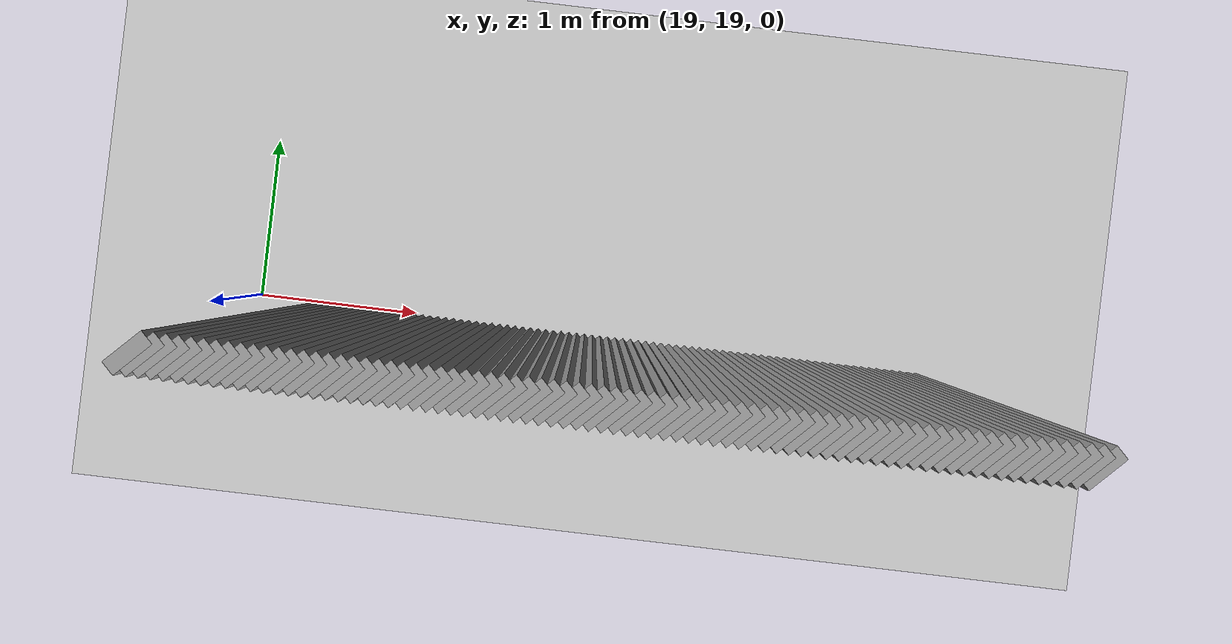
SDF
<sdf version="1.5">
 <world name="default">
  <include><uri>model://ground_plane</uri></include>
  <include><uri>model://sun</uri></include>
  <model name="grey_wall_553">
   <static>1</static>
   <link name="link">
    <pose>19.3 18.9  1.4 0 0 -0.785398163397</pose>
    <collision name="collision"><geometry><box><size>0.0707106781187 .2  2.8</size></box></geometry></collision>
    <visual name="visual">
     <cast_shadows>0</cast_shadows>
     <geometry><box><size>0.0707106781187 .2  2.8</size></box></geometry>
     <material>
      <script>
       <uri>model://grey_wall/materials/scripts</uri>
       <uri>model://grey_wall/materials/textures</uri>
       <name>vrc/grey_wall</name>
      </script>
     </material>
    </visual>
   </link>
  </model>
  <model name="grey_wall_554">
   <static>1</static>
   <link name="link">
    <pose>19.35 18.9  1.4 0 0 -0.785398163397</pose>
    <collision name="collision"><geometry><box><size>0.0707106781187 .2  2.8</size></box></geometry></collision>
    <visual name="visual">
     <cast_shadows>0</cast_shadows>
     <geometry><box><size>0.0707106781187 .2  2.8</size></box></geometry>
     <material>
      <script>
       <uri>model://grey_wall/materials/scripts</uri>
       <uri>model://grey_wall/materials/textures</uri>
       <name>vrc/grey_wall</name>
      </script>
     </material>
    </visual>
   </link>
  </model>
  <model name="grey_wall_555">
   <static>1</static>
   <link name="link">
    <pose>19.4 18.9  1.4 0 0 -0.785398163397</pose>
    <collision name="collision"><geometry><box><size>0.0707106781187 .2  2.8</size></box></geometry></collision>
    <visual name="visual">
     <cast_shadows>0</cast_shadows>
     <geometry><box><size>0.0707106781187 .2  2.8</size></box></geometry>
     <material>
      <script>
       <uri>model://grey_wall/materials/scripts</uri>
       <uri>model://grey_wall/materials/textures</uri>
       <name>vrc/grey_wall</name>
      </script>
     </material>
    </visual>
   </link>
  </model>
  <model name="grey_wall_556">
   <static>1</static>
   <link name="link">
    <pose>19.45 18.9  1.4 0 0 -0.785398163397</pose>
    <collision name="collision"><geometry><box><size>0.0707106781187 .2  2.8</size></box></geometry></collision>
    <visual name="visual">
     <cast_shadows>0</cast_shadows>
     <geometry><box><size>0.0707106781187 .2  2.8</size></box></geometry>
     <material>
      <script>
       <uri>model://grey_wall/materials/scripts</uri>
       <uri>model://grey_wall/materials/textures</uri>
       <name>vrc/grey_wall</name>
      </script>
     </material>
    </visual>
   </link>
  </model>
  <model name="grey_wall_557">
   <static>1</static>
   <link name="link">
    <pose>19.5 18.9  1.4 0 0 -0.785398163397</pose>
    <collision name="collision"><geometry><box><size>0.0707106781187 .2  2.8</size></box></geometry></collision>
    <visual name="visual">
     <cast_shadows>0</cast_shadows>
     <geometry><box><size>0.0707106781187 .2  2.8</size></box></geometry>
     <material>
      <script>
       <uri>model://grey_wall/materials/scripts</uri>
       <uri>model://grey_wall/materials/textures</uri>
       <name>vrc/grey_wall</name>
      </script>
     </material>
    </visual>
   </link>
  </model>
  <model name="grey_wall_558">
   <static>1</static>
   <link name="link">
    <pose>19.55 18.9  1.4 0 0 -0.785398163397</pose>
    <collision name="collision"><geometry><box><size>0.0707106781187 .2  2.8</size></box></geometry></collision>
    <visual name="visual">
     <cast_shadows>0</cast_shadows>
     <geometry><box><size>0.0707106781187 .2  2.8</size></box></geometry>
     <material>
      <script>
       <uri>model://grey_wall/materials/scripts</uri>
       <uri>model://grey_wall/materials/textures</uri>
       <name>vrc/grey_wall</name>
      </script>
     </material>
    </visual>
   </link>
  </model>
  <model name="grey_wall_559">
   <static>1</static>
   <link name="link">
    <pose>19.6 18.9  1.4 0 0 -0.785398163397</pose>
    <collision name="collision"><geometry><box><size>0.0707106781187 .2  2.8</size></box></geometry></collision>
    <visual name="visual">
     <cast_shadows>0</cast_shadows>
     <geometry><box><size>0.0707106781187 .2  2.8</size></box></geometry>
     <material>
      <script>
       <uri>model://grey_wall/materials/scripts</uri>
       <uri>model://grey_wall/materials/textures</uri>
       <name>vrc/grey_wall</name>
      </script>
     </material>
    </visual>
   </link>
  </model>
  <model name="grey_wall_560">
   <static>1</static>
   <link name="link">
    <pose>19.65 18.9  1.4 0 0 -0.785398163397</pose>
    <collision name="collision"><geometry><box><size>0.0707106781187 .2  2.8</size></box></geometry></collision>
    <visual name="visual">
     <cast_shadows>0</cast_shadows>
     <geometry><box><size>0.0707106781187 .2  2.8</size></box></geometry>
     <material>
      <script>
       <uri>model://grey_wall/materials/scripts</uri>
       <uri>model://grey_wall/materials/textures</uri>
       <name>vrc/grey_wall</name>
      </script>
     </material>
    </visual>
   </link>
  </model>
  <model name="grey_wall_561">
   <static>1</static>
   <link name="link">
    <pose>19.7 18.9  1.4 0 0 -0.785398163397</pose>
    <collision name="collision"><geometry><box><size>0.0707106781187 .2  2.8</size></box></geometry></collision>
    <visual name="visual">
     <cast_shadows>0</cast_shadows>
     <geometry><box><size>0.0707106781187 .2  2.8</size></box></geometry>
     <material>
      <script>
       <uri>model://grey_wall/materials/scripts</uri>
       <uri>model://grey_wall/materials/textures</uri>
       <name>vrc/grey_wall</name>
      </script>
     </material>
    </visual>
   </link>
  </model>
  <model name="grey_wall_562">
   <static>1</static>
   <link name="link">
    <pose>19.75 18.9  1.4 0 0 -0.785398163397</pose>
    <collision name="collision"><geometry><box><size>0.0707106781187 .2  2.8</size></box></geometry></collision>
    <visual name="visual">
     <cast_shadows>0</cast_shadows>
     <geometry><box><size>0.0707106781187 .2  2.8</size></box></geometry>
     <material>
      <script>
       <uri>model://grey_wall/materials/scripts</uri>
       <uri>model://grey_wall/materials/textures</uri>
       <name>vrc/grey_wall</name>
      </script>
     </material>
    </visual>
   </link>
  </model>
  <model name="grey_wall_563">
   <static>1</static>
   <link name="link">
    <pose>19.8 18.9  1.4 0 0 -0.785398163397</pose>
    <collision name="collision"><geometry><box><size>0.0707106781187 .2  2.8</size></box></geometry></collision>
    <visual name="visual">
     <cast_shadows>0</cast_shadows>
     <geometry><box><size>0.0707106781187 .2  2.8</size></box></geometry>
     <material>
      <script>
       <uri>model://grey_wall/materials/scripts</uri>
       <uri>model://grey_wall/materials/textures</uri>
       <name>vrc/grey_wall</name>
      </script>
     </material>
    </visual>
   </link>
  </model>
  <model name="grey_wall_564">
   <static>1</static>
   <link name="link">
    <pose>19.85 18.9  1.4 0 0 -0.785398163397</pose>
    <collision name="collision"><geometry><box><size>0.0707106781187 .2  2.8</size></box></geometry></collision>
    <visual name="visual">
     <cast_shadows>0</cast_shadows>
     <geometry><box><size>0.0707106781187 .2  2.8</size></box></geometry>
     <material>
      <script>
       <uri>model://grey_wall/materials/scripts</uri>
       <uri>model://grey_wall/materials/textures</uri>
       <name>vrc/grey_wall</name>
      </script>
     </material>
    </visual>
   </link>
  </model>
  <model name="grey_wall_565">
   <static>1</static>
   <link name="link">
    <pose>19.9 18.9  1.4 0 0 -0.785398163397</pose>
    <collision name="collision"><geometry><box><size>0.0707106781187 .2  2.8</size></box></geometry></collision>
    <visual name="visual">
     <cast_shadows>0</cast_shadows>
     <geometry><box><size>0.0707106781187 .2  2.8</size></box></geometry>
     <material>
      <script>
       <uri>model://grey_wall/materials/scripts</uri>
       <uri>model://grey_wall/materials/textures</uri>
       <name>vrc/grey_wall</name>
      </script>
     </material>
    </visual>
   </link>
  </model>
  <model name="grey_wall_566">
   <static>1</static>
   <link name="link">
    <pose>19.95 18.9  1.4 0 0 -0.785398163397</pose>
    <collision name="collision"><geometry><box><size>0.0707106781187 .2  2.8</size></box></geometry></collision>
    <visual name="visual">
     <cast_shadows>0</cast_shadows>
     <geometry><box><size>0.0707106781187 .2  2.8</size></box></geometry>
     <material>
      <script>
       <uri>model://grey_wall/materials/scripts</uri>
       <uri>model://grey_wall/materials/textures</uri>
       <name>vrc/grey_wall</name>
      </script>
     </material>
    </visual>
   </link>
  </model>
  <model name="grey_wall_567">
   <static>1</static>
   <link name="link">
    <pose>20.0 18.9  1.4 0 0 -0.785398163397</pose>
    <collision name="collision"><geometry><box><size>0.0707106781187 .2  2.8</size></box></geometry></collision>
    <visual name="visual">
     <cast_shadows>0</cast_shadows>
     <geometry><box><size>0.0707106781187 .2  2.8</size></box></geometry>
     <material>
      <script>
       <uri>model://grey_wall/materials/scripts</uri>
       <uri>model://grey_wall/materials/textures</uri>
       <name>vrc/grey_wall</name>
      </script>
     </material>
    </visual>
   </link>
  </model>
  <model name="grey_wall_568">
   <static>1</static>
   <link name="link">
    <pose>20.05 18.9  1.4 0 0 -0.785398163397</pose>
    <collision name="collision"><geometry><box><size>0.0707106781187 .2  2.8</size></box></geometry></collision>
    <visual name="visual">
     <cast_shadows>0</cast_shadows>
     <geometry><box><size>0.0707106781187 .2  2.8</size></box></geometry>
     <material>
      <script>
       <uri>model://grey_wall/materials/scripts</uri>
       <uri>model://grey_wall/materials/textures</uri>
       <name>vrc/grey_wall</name>
      </script>
     </material>
    </visual>
   </link>
  </model>
  <model name="grey_wall_569">
   <static>1</static>
   <link name="link">
    <pose>20.1 18.9  1.4 0 0 -0.785398163397</pose>
    <collision name="collision"><geometry><box><size>0.0707106781187 .2  2.8</size></box></geometry></collision>
    <visual name="visual">
     <cast_shadows>0</cast_shadows>
     <geometry><box><size>0.0707106781187 .2  2.8</size></box></geometry>
     <material>
      <script>
       <uri>model://grey_wall/materials/scripts</uri>
       <uri>model://grey_wall/materials/textures</uri>
       <name>vrc/grey_wall</name>
      </script>
     </material>
    </visual>
   </link>
  </model>
  <model name="grey_wall_570">
   <static>1</static>
   <link name="link">
    <pose>20.15 18.9  1.4 0 0 -0.785398163397</pose>
    <collision name="collision"><geometry><box><size>0.0707106781187 .2  2.8</size></box></geometry></collision>
    <visual name="visual">
     <cast_shadows>0</cast_shadows>
     <geometry><box><size>0.0707106781187 .2  2.8</size></box></geometry>
     <material>
      <script>
       <uri>model://grey_wall/materials/scripts</uri>
       <uri>model://grey_wall/materials/textures</uri>
       <name>vrc/grey_wall</name>
      </script>
     </material>
    </visual>
   </link>
  </model>
  <model name="grey_wall_571">
   <static>1</static>
   <link name="link">
    <pose>20.2 18.9  1.4 0 0 -0.785398163397</pose>
    <collision name="collision"><geometry><box><size>0.0707106781187 .2  2.8</size></box></geometry></collision>
    <visual name="visual">
     <cast_shadows>0</cast_shadows>
     <geometry><box><size>0.0707106781187 .2  2.8</size></box></geometry>
     <material>
      <script>
       <uri>model://grey_wall/materials/scripts</uri>
       <uri>model://grey_wall/materials/textures</uri>
       <name>vrc/grey_wall</name>
      </script>
     </material>
    </visual>
   </link>
  </model>
  <model name="grey_wall_572">
   <static>1</static>
   <link name="link">
    <pose>20.25 18.9  1.4 0 0 -0.785398163397</pose>
    <collision name="collision"><geometry><box><size>0.0707106781187 .2  2.8</size></box></geometry></collision>
    <visual name="visual">
     <cast_shadows>0</cast_shadows>
     <geometry><box><size>0.0707106781187 .2  2.8</size></box></geometry>
     <material>
      <script>
       <uri>model://grey_wall/materials/scripts</uri>
       <uri>model://grey_wall/materials/textures</uri>
       <name>vrc/grey_wall</name>
      </script>
     </material>
    </visual>
   </link>
  </model>
  <model name="grey_wall_573">
   <static>1</static>
   <link name="link">
    <pose>20.3 18.9  1.4 0 0 -0.785398163397</pose>
    <collision name="collision"><geometry><box><size>0.0707106781187 .2  2.8</size></box></geometry></collision>
    <visual name="visual">
     <cast_shadows>0</cast_shadows>
     <geometry><box><size>0.0707106781187 .2  2.8</size></box></geometry>
     <material>
      <script>
       <uri>model://grey_wall/materials/scripts</uri>
       <uri>model://grey_wall/materials/textures</uri>
       <name>vrc/grey_wall</name>
      </script>
     </material>
    </visual>
   </link>
  </model>
  <model name="grey_wall_574">
   <static>1</static>
   <link name="link">
    <pose>20.35 18.9  1.4 0 0 -0.785398163397</pose>
    <collision name="collision"><geometry><box><size>0.0707106781187 .2  2.8</size></box></geometry></collision>
    <visual name="visual">
     <cast_shadows>0</cast_shadows>
     <geometry><box><size>0.0707106781187 .2  2.8</size></box></geometry>
     <material>
      <script>
       <uri>model://grey_wall/materials/scripts</uri>
       <uri>model://grey_wall/materials/textures</uri>
       <name>vrc/grey_wall</name>
      </script>
     </material>
    </visual>
   </link>
  </model>
  <model name="grey_wall_575">
   <static>1</static>
   <link name="link">
    <pose>20.4 18.9  1.4 0 0 -0.785398163397</pose>
    <collision name="collision"><geometry><box><size>0.0707106781187 .2  2.8</size></box></geometry></collision>
    <visual name="visual">
     <cast_shadows>0</cast_shadows>
     <geometry><box><size>0.0707106781187 .2  2.8</size></box></geometry>
     <material>
      <script>
       <uri>model://grey_wall/materials/scripts</uri>
       <uri>model://grey_wall/materials/textures</uri>
       <name>vrc/grey_wall</name>
      </script>
     </material>
    </visual>
   </link>
  </model>
  <model name="grey_wall_576">
   <static>1</static>
   <link name="link">
    <pose>20.45 18.9  1.4 0 0 -0.785398163397</pose>
    <collision name="collision"><geometry><box><size>0.0707106781187 .2  2.8</size></box></geometry></collision>
    <visual name="visual">
     <cast_shadows>0</cast_shadows>
     <geometry><box><size>0.0707106781187 .2  2.8</size></box></geometry>
     <material>
      <script>
       <uri>model://grey_wall/materials/scripts</uri>
       <uri>model://grey_wall/materials/textures</uri>
       <name>vrc/grey_wall</name>
      </script>
     </material>
    </visual>
   </link>
  </model>
  <model name="grey_wall_577">
   <static>1</static>
   <link name="link">
    <pose>20.5 18.9  1.4 0 0 -0.785398163397</pose>
    <collision name="collision"><geometry><box><size>0.0707106781187 .2  2.8</size></box></geometry></collision>
    <visual name="visual">
     <cast_shadows>0</cast_shadows>
     <geometry><box><size>0.0707106781187 .2  2.8</size></box></geometry>
     <material>
      <script>
       <uri>model://grey_wall/materials/scripts</uri>
       <uri>model://grey_wall/materials/textures</uri>
       <name>vrc/grey_wall</name>
      </script>
     </material>
    </visual>
   </link>
  </model>
  <model name="grey_wall_578">
   <static>1</static>
   <link name="link">
    <pose>20.55 18.9  1.4 0 0 -0.785398163397</pose>
    <collision name="collision"><geometry><box><size>0.0707106781187 .2  2.8</size></box></geometry></collision>
    <visual name="visual">
     <cast_shadows>0</cast_shadows>
     <geometry><box><size>0.0707106781187 .2  2.8</size></box></geometry>
     <material>
      <script>
       <uri>model://grey_wall/materials/scripts</uri>
       <uri>model://grey_wall/materials/textures</uri>
       <name>vrc/grey_wall</name>
      </script>
     </material>
    </visual>
   </link>
  </model>
  <model name="grey_wall_579">
   <static>1</static>
   <link name="link">
    <pose>20.6 18.9  1.4 0 0 -0.785398163397</pose>
    <collision name="collision"><geometry><box><size>0.0707106781187 .2  2.8</size></box></geometry></collision>
    <visual name="visual">
     <cast_shadows>0</cast_shadows>
     <geometry><box><size>0.0707106781187 .2  2.8</size></box></geometry>
     <material>
      <script>
       <uri>model://grey_wall/materials/scripts</uri>
       <uri>model://grey_wall/materials/textures</uri>
       <name>vrc/grey_wall</name>
      </script>
     </material>
    </visual>
   </link>
  </model>
  <model name="grey_wall_580">
   <static>1</static>
   <link name="link">
    <pose>20.65 18.9  1.4 0 0 -0.785398163397</pose>
    <collision name="collision"><geometry><box><size>0.0707106781187 .2  2.8</size></box></geometry></collision>
    <visual name="visual">
     <cast_shadows>0</cast_shadows>
     <geometry><box><size>0.0707106781187 .2  2.8</size></box></geometry>
     <material>
      <script>
       <uri>model://grey_wall/materials/scripts</uri>
       <uri>model://grey_wall/materials/textures</uri>
       <name>vrc/grey_wall</name>
      </script>
     </material>
    </visual>
   </link>
  </model>
  <model name="grey_wall_581">
   <static>1</static>
   <link name="link">
    <pose>20.7 18.9  1.4 0 0 -0.785398163397</pose>
    <collision name="collision"><geometry><box><size>0.0707106781187 .2  2.8</size></box></geometry></collision>
    <visual name="visual">
     <cast_shadows>0</cast_shadows>
     <geometry><box><size>0.0707106781187 .2  2.8</size></box></geometry>
     <material>
      <script>
       <uri>model://grey_wall/materials/scripts</uri>
       <uri>model://grey_wall/materials/textures</uri>
       <name>vrc/grey_wall</name>
      </script>
     </material>
    </visual>
   </link>
  </model>
  <model name="grey_wall_582">
   <static>1</static>
   <link name="link">
    <pose>20.75 18.9  1.4 0 0 -0.785398163397</pose>
    <collision name="collision"><geometry><box><size>0.0707106781187 .2  2.8</size></box></geometry></collision>
    <visual name="visual">
     <cast_shadows>0</cast_shadows>
     <geometry><box><size>0.0707106781187 .2  2.8</size></box></geometry>
     <material>
      <script>
       <uri>model://grey_wall/materials/scripts</uri>
       <uri>model://grey_wall/materials/textures</uri>
       <name>vrc/grey_wall</name>
      </script>
     </material>
    </visual>
   </link>
  </model>
  <model name="grey_wall_583">
   <static>1</static>
   <link name="link">
    <pose>20.8 18.9  1.4 0 0 -0.785398163397</pose>
    <collision name="collision"><geometry><box><size>0.0707106781187 .2  2.8</size></box></geometry></collision>
    <visual name="visual">
     <cast_shadows>0</cast_shadows>
     <geometry><box><size>0.0707106781187 .2  2.8</size></box></geometry>
     <material>
      <script>
       <uri>model://grey_wall/materials/scripts</uri>
       <uri>model://grey_wall/materials/textures</uri>
       <name>vrc/grey_wall</name>
      </script>
     </material>
    </visual>
   </link>
  </model>
  <model name="grey_wall_584">
   <static>1</static>
   <link name="link">
    <pose>20.85 18.9  1.4 0 0 -0.785398163397</pose>
    <collision name="collision"><geometry><box><size>0.0707106781187 .2  2.8</size></box></geometry></collision>
    <visual name="visual">
     <cast_shadows>0</cast_shadows>
     <geometry><box><size>0.0707106781187 .2  2.8</size></box></geometry>
     <material>
      <script>
       <uri>model://grey_wall/materials/scripts</uri>
       <uri>model://grey_wall/materials/textures</uri>
       <name>vrc/grey_wall</name>
      </script>
     </material>
    </visual>
   </link>
  </model>
  <model name="grey_wall_585">
   <static>1</static>
   <link name="link">
    <pose>20.9 18.9  1.4 0 0 -0.785398163397</pose>
    <collision name="collision"><geometry><box><size>0.0707106781187 .2  2.8</size></box></geometry></collision>
    <visual name="visual">
     <cast_shadows>0</cast_shadows>
     <geometry><box><size>0.0707106781187 .2  2.8</size></box></geometry>
     <material>
      <script>
       <uri>model://grey_wall/materials/scripts</uri>
       <uri>model://grey_wall/materials/textures</uri>
       <name>vrc/grey_wall</name>
      </script>
     </material>
    </visual>
   </link>
  </model>
  <model name="grey_wall_586">
   <static>1</static>
   <link name="link">
    <pose>20.95 18.9  1.4 0 0 -0.785398163397</pose>
    <collision name="collision"><geometry><box><size>0.0707106781187 .2  2.8</size></box></geometry></collision>
    <visual name="visual">
     <cast_shadows>0</cast_shadows>
     <geometry><box><size>0.0707106781187 .2  2.8</size></box></geometry>
     <material>
      <script>
       <uri>model://grey_wall/materials/scripts</uri>
       <uri>model://grey_wall/materials/textures</uri>
       <name>vrc/grey_wall</name>
      </script>
     </material>
    </visual>
   </link>
  </model>
  <model name="grey_wall_587">
   <static>1</static>
   <link name="link">
    <pose>21.0 18.9  1.4 0 0 -0.785398163397</pose>
    <collision name="collision"><geometry><box><size>0.0707106781187 .2  2.8</size></box></geometry></collision>
    <visual name="visual">
     <cast_shadows>0</cast_shadows>
     <geometry><box><size>0.0707106781187 .2  2.8</size></box></geometry>
     <material>
      <script>
       <uri>model://grey_wall/materials/scripts</uri>
       <uri>model://grey_wall/materials/textures</uri>
       <name>vrc/grey_wall</name>
      </script>
     </material>
    </visual>
   </link>
  </model>
  <model name="grey_wall_588">
   <static>1</static>
   <link name="link">
    <pose>21.05 18.9  1.4 0 0 -0.785398163397</pose>
    <collision name="collision"><geometry><box><size>0.0707106781187 .2  2.8</size></box></geometry></collision>
    <visual name="visual">
     <cast_shadows>0</cast_shadows>
     <geometry><box><size>0.0707106781187 .2  2.8</size></box></geometry>
     <material>
      <script>
       <uri>model://grey_wall/materials/scripts</uri>
       <uri>model://grey_wall/materials/textures</uri>
       <name>vrc/grey_wall</name>
      </script>
     </material>
    </visual>
   </link>
  </model>
  <model name="grey_wall_589">
   <static>1</static>
   <link name="link">
    <pose>21.1 18.9  1.4 0 0 -0.785398163397</pose>
    <collision name="collision"><geometry><box><size>0.0707106781187 .2  2.8</size></box></geometry></collision>
    <visual name="visual">
     <cast_shadows>0</cast_shadows>
     <geometry><box><size>0.0707106781187 .2  2.8</size></box></geometry>
     <material>
      <script>
       <uri>model://grey_wall/materials/scripts</uri>
       <uri>model://grey_wall/materials/textures</uri>
       <name>vrc/grey_wall</name>
      </script>
     </material>
    </visual>
   </link>
  </model>
  <model name="grey_wall_590">
   <static>1</static>
   <link name="link">
    <pose>21.15 18.9  1.4 0 0 -0.785398163397</pose>
    <collision name="collision"><geometry><box><size>0.0707106781187 .2  2.8</size></box></geometry></collision>
    <visual name="visual">
     <cast_shadows>0</cast_shadows>
     <geometry><box><size>0.0707106781187 .2  2.8</size></box></geometry>
     <material>
      <script>
       <uri>model://grey_wall/materials/scripts</uri>
       <uri>model://grey_wall/materials/textures</uri>
       <name>vrc/grey_wall</name>
      </script>
     </material>
    </visual>
   </link>
  </model>
  <model name="grey_wall_591">
   <static>1</static>
   <link name="link">
    <pose>21.2 18.9  1.4 0 0 -0.785398163397</pose>
    <collision name="collision"><geometry><box><size>0.0707106781187 .2  2.8</size></box></geometry></collision>
    <visual name="visual">
     <cast_shadows>0</cast_shadows>
     <geometry><box><size>0.0707106781187 .2  2.8</size></box></geometry>
     <material>
      <script>
       <uri>model://grey_wall/materials/scripts</uri>
       <uri>model://grey_wall/materials/textures</uri>
       <name>vrc/grey_wall</name>
      </script>
     </material>
    </visual>
   </link>
  </model>
  <model name="grey_wall_592">
   <static>1</static>
   <link name="link">
    <pose>21.25 18.9  1.4 0 0 -0.785398163397</pose>
    <collision name="collision"><geometry><box><size>0.0707106781187 .2  2.8</size></box></geometry></collision>
    <visual name="visual">
     <cast_shadows>0</cast_shadows>
     <geometry><box><size>0.0707106781187 .2  2.8</size></box></geometry>
     <material>
      <script>
       <uri>model://grey_wall/materials/scripts</uri>
       <uri>model://grey_wall/materials/textures</uri>
       <name>vrc/grey_wall</name>
      </script>
     </material>
    </visual>
   </link>
  </model>
  <model name="grey_wall_593">
   <static>1</static>
   <link name="link">
    <pose>21.3 18.9  1.4 0 0 -0.785398163397</pose>
    <collision name="collision"><geometry><box><size>0.0707106781187 .2  2.8</size></box></geometry></collision>
    <visual name="visual">
     <cast_shadows>0</cast_shadows>
     <geometry><box><size>0.0707106781187 .2  2.8</size></box></geometry>
     <material>
      <script>
       <uri>model://grey_wall/materials/scripts</uri>
       <uri>model://grey_wall/materials/textures</uri>
       <name>vrc/grey_wall</name>
      </script>
     </material>
    </visual>
   </link>
  </model>
  <model name="grey_wall_594">
   <static>1</static>
   <link name="link">
    <pose>21.35 18.9  1.4 0 0 -0.785398163397</pose>
    <collision name="collision"><geometry><box><size>0.0707106781187 .2  2.8</size></box></geometry></collision>
    <visual name="visual">
     <cast_shadows>0</cast_shadows>
     <geometry><box><size>0.0707106781187 .2  2.8</size></box></geometry>
     <material>
      <script>
       <uri>model://grey_wall/materials/scripts</uri>
       <uri>model://grey_wall/materials/textures</uri>
       <name>vrc/grey_wall</name>
      </script>
     </material>
    </visual>
   </link>
  </model>
  <model name="grey_wall_595">
   <static>1</static>
   <link name="link">
    <pose>21.4 18.9  1.4 0 0 -0.785398163397</pose>
    <collision name="collision"><geometry><box><size>0.0707106781187 .2  2.8</size></box></geometry></collision>
    <visual name="visual">
     <cast_shadows>0</cast_shadows>
     <geometry><box><size>0.0707106781187 .2  2.8</size></box></geometry>
     <material>
      <script>
       <uri>model://grey_wall/materials/scripts</uri>
       <uri>model://grey_wall/materials/textures</uri>
       <name>vrc/grey_wall</name>
      </script>
     </material>
    </visual>
   </link>
  </model>
  <model name="grey_wall_596">
   <static>1</static>
   <link name="link">
    <pose>21.45 18.9  1.4 0 0 -0.785398163397</pose>
    <collision name="collision"><geometry><box><size>0.0707106781187 .2  2.8</size></box></geometry></collision>
    <visual name="visual">
     <cast_shadows>0</cast_shadows>
     <geometry><box><size>0.0707106781187 .2  2.8</size></box></geometry>
     <material>
      <script>
       <uri>model://grey_wall/materials/scripts</uri>
       <uri>model://grey_wall/materials/textures</uri>
       <name>vrc/grey_wall</name>
      </script>
     </material>
    </visual>
   </link>
  </model>
  <model name="grey_wall_597">
   <static>1</static>
   <link name="link">
    <pose>21.5 18.9  1.4 0 0 -0.785398163397</pose>
    <collision name="collision"><geometry><box><size>0.0707106781187 .2  2.8</size></box></geometry></collision>
    <visual name="visual">
     <cast_shadows>0</cast_shadows>
     <geometry><box><size>0.0707106781187 .2  2.8</size></box></geometry>
     <material>
      <script>
       <uri>model://grey_wall/materials/scripts</uri>
       <uri>model://grey_wall/materials/textures</uri>
       <name>vrc/grey_wall</name>
      </script>
     </material>
    </visual>
   </link>
  </model>
  <model name="grey_wall_598">
   <static>1</static>
   <link name="link">
    <pose>21.55 18.9  1.4 0 0 -0.785398163397</pose>
    <collision name="collision"><geometry><box><size>0.0707106781187 .2  2.8</size></box></geometry></collision>
    <visual name="visual">
     <cast_shadows>0</cast_shadows>
     <geometry><box><size>0.0707106781187 .2  2.8</size></box></geometry>
     <material>
      <script>
       <uri>model://grey_wall/materials/scripts</uri>
       <uri>model://grey_wall/materials/textures</uri>
       <name>vrc/grey_wall</name>
      </script>
     </material>
    </visual>
   </link>
  </model>
  <model name="grey_wall_599">
   <static>1</static>
   <link name="link">
    <pose>21.6 18.9  1.4 0 0 -0.785398163397</pose>
    <collision name="collision"><geometry><box><size>0.0707106781187 .2  2.8</size></box></geometry></collision>
    <visual name="visual">
     <cast_shadows>0</cast_shadows>
     <geometry><box><size>0.0707106781187 .2  2.8</size></box></geometry>
     <material>
      <script>
       <uri>model://grey_wall/materials/scripts</uri>
       <uri>model://grey_wall/materials/textures</uri>
       <name>vrc/grey_wall</name>
      </script>
     </material>
    </visual>
   </link>
  </model>
  <model name="grey_wall_600">
   <static>1</static>
   <link name="link">
    <pose>21.65 18.9  1.4 0 0 -0.785398163397</pose>
    <collision name="collision"><geometry><box><size>0.0707106781187 .2  2.8</size></box></geometry></collision>
    <visual name="visual">
     <cast_shadows>0</cast_shadows>
     <geometry><box><size>0.0707106781187 .2  2.8</size></box></geometry>
     <material>
      <script>
       <uri>model://grey_wall/materials/scripts</uri>
       <uri>model://grey_wall/materials/textures</uri>
       <name>vrc/grey_wall</name>
      </script>
     </material>
    </visual>
   </link>
  </model>
  <model name="grey_wall_601">
   <static>1</static>
   <link name="link">
    <pose>21.7 18.9  1.4 0 0 -0.785398163397</pose>
    <collision name="collision"><geometry><box><size>0.0707106781187 .2  2.8</size></box></geometry></collision>
    <visual name="visual">
     <cast_shadows>0</cast_shadows>
     <geometry><box><size>0.0707106781187 .2  2.8</size></box></geometry>
     <material>
      <script>
       <uri>model://grey_wall/materials/scripts</uri>
       <uri>model://grey_wall/materials/textures</uri>
       <name>vrc/grey_wall</name>
      </script>
     </material>
    </visual>
   </link>
  </model>
  <model name="grey_wall_602">
   <static>1</static>
   <link name="link">
    <pose>21.75 18.9  1.4 0 0 -0.785398163397</pose>
    <collision name="collision"><geometry><box><size>0.0707106781187 .2  2.8</size></box></geometry></collision>
    <visual name="visual">
     <cast_shadows>0</cast_shadows>
     <geometry><box><size>0.0707106781187 .2  2.8</size></box></geometry>
     <material>
      <script>
       <uri>model://grey_wall/materials/scripts</uri>
       <uri>model://grey_wall/materials/textures</uri>
       <name>vrc/grey_wall</name>
      </script>
     </material>
    </visual>
   </link>
  </model>
  <model name="grey_wall_603">
   <static>1</static>
   <link name="link">
    <pose>21.8 18.9  1.4 0 0 -0.785398163397</pose>
    <collision name="collision"><geometry><box><size>0.0707106781187 .2  2.8</size></box></geometry></collision>
    <visual name="visual">
     <cast_shadows>0</cast_shadows>
     <geometry><box><size>0.0707106781187 .2  2.8</size></box></geometry>
     <material>
      <script>
       <uri>model://grey_wall/materials/scripts</uri>
       <uri>model://grey_wall/materials/textures</uri>
       <name>vrc/grey_wall</name>
      </script>
     </material>
    </visual>
   </link>
  </model>
  <model name="grey_wall_604">
   <static>1</static>
   <link name="link">
    <pose>21.85 18.9  1.4 0 0 -0.785398163397</pose>
    <collision name="collision"><geometry><box><size>0.0707106781187 .2  2.8</size></box></geometry></collision>
    <visual name="visual">
     <cast_shadows>0</cast_shadows>
     <geometry><box><size>0.0707106781187 .2  2.8</size></box></geometry>
     <material>
      <script>
       <uri>model://grey_wall/materials/scripts</uri>
       <uri>model://grey_wall/materials/textures</uri>
       <name>vrc/grey_wall</name>
      </script>
     </material>
    </visual>
   </link>
  </model>
  <model name="grey_wall_605">
   <static>1</static>
   <link name="link">
    <pose>21.9 18.9  1.4 0 0 -0.785398163397</pose>
    <collision name="collision"><geometry><box><size>0.0707106781187 .2  2.8</size></box></geometry></collision>
    <visual name="visual">
     <cast_shadows>0</cast_shadows>
     <geometry><box><size>0.0707106781187 .2  2.8</size></box></geometry>
     <material>
      <script>
       <uri>model://grey_wall/materials/scripts</uri>
       <uri>model://grey_wall/materials/textures</uri>
       <name>vrc/grey_wall</name>
      </script>
     </material>
    </visual>
   </link>
  </model>
  <model name="grey_wall_606">
   <static>1</static>
   <link name="link">
    <pose>21.95 18.9  1.4 0 0 -0.785398163397</pose>
    <collision name="collision"><geometry><box><size>0.0707106781187 .2  2.8</size></box></geometry></collision>
    <visual name="visual">
     <cast_shadows>0</cast_shadows>
     <geometry><box><size>0.0707106781187 .2  2.8</size></box></geometry>
     <material>
      <script>
       <uri>model://grey_wall/materials/scripts</uri>
       <uri>model://grey_wall/materials/textures</uri>
       <name>vrc/grey_wall</name>
      </script>
     </material>
    </visual>
   </link>
  </model>
  <model name="grey_wall_607">
   <static>1</static>
   <link name="link">
    <pose>22.0 18.9  1.4 0 0 -0.785398163397</pose>
    <collision name="collision"><geometry><box><size>0.0707106781187 .2  2.8</size></box></geometry></collision>
    <visual name="visual">
     <cast_shadows>0</cast_shadows>
     <geometry><box><size>0.0707106781187 .2  2.8</size></box></geometry>
     <material>
      <script>
       <uri>model://grey_wall/materials/scripts</uri>
       <uri>model://grey_wall/materials/textures</uri>
       <name>vrc/grey_wall</name>
      </script>
     </material>
    </visual>
   </link>
  </model>
  <model name="grey_wall_608">
   <static>1</static>
   <link name="link">
    <pose>22.05 18.9  1.4 0 0 -0.785398163397</pose>
    <collision name="collision"><geometry><box><size>0.0707106781187 .2  2.8</size></box></geometry></collision>
    <visual name="visual">
     <cast_shadows>0</cast_shadows>
     <geometry><box><size>0.0707106781187 .2  2.8</size></box></geometry>
     <material>
      <script>
       <uri>model://grey_wall/materials/scripts</uri>
       <uri>model://grey_wall/materials/textures</uri>
       <name>vrc/grey_wall</name>
      </script>
     </material>
    </visual>
   </link>
  </model>
  <model name="grey_wall_609">
   <static>1</static>
   <link name="link">
    <pose>22.1 18.9  1.4 0 0 -0.785398163397</pose>
    <collision name="collision"><geometry><box><size>0.0707106781187 .2  2.8</size></box></geometry></collision>
    <visual name="visual">
     <cast_shadows>0</cast_shadows>
     <geometry><box><size>0.0707106781187 .2  2.8</size></box></geometry>
     <material>
      <script>
       <uri>model://grey_wall/materials/scripts</uri>
       <uri>model://grey_wall/materials/textures</uri>
       <name>vrc/grey_wall</name>
      </script>
     </material>
    </visual>
   </link>
  </model>
  <model name="grey_wall_610">
   <static>1</static>
   <link name="link">
    <pose>22.15 18.9  1.4 0 0 -0.785398163397</pose>
    <collision name="collision"><geometry><box><size>0.0707106781187 .2  2.8</size></box></geometry></collision>
    <visual name="visual">
     <cast_shadows>0</cast_shadows>
     <geometry><box><size>0.0707106781187 .2  2.8</size></box></geometry>
     <material>
      <script>
       <uri>model://grey_wall/materials/scripts</uri>
       <uri>model://grey_wall/materials/textures</uri>
       <name>vrc/grey_wall</name>
      </script>
     </material>
    </visual>
   </link>
  </model>
  <model name="grey_wall_611">
   <static>1</static>
   <link name="link">
    <pose>22.2 18.9  1.4 0 0 -0.785398163397</pose>
    <collision name="collision"><geometry><box><size>0.0707106781187 .2  2.8</size></box></geometry></collision>
    <visual name="visual">
     <cast_shadows>0</cast_shadows>
     <geometry><box><size>0.0707106781187 .2  2.8</size></box></geometry>
     <material>
      <script>
       <uri>model://grey_wall/materials/scripts</uri>
       <uri>model://grey_wall/materials/textures</uri>
       <name>vrc/grey_wall</name>
      </script>
     </material>
    </visual>
   </link>
  </model>
  <model name="grey_wall_612">
   <static>1</static>
   <link name="link">
    <pose>22.25 18.9  1.4 0 0 -0.785398163397</pose>
    <collision name="collision"><geometry><box><size>0.0707106781187 .2  2.8</size></box></geometry></collision>
    <visual name="visual">
     <cast_shadows>0</cast_shadows>
     <geometry><box><size>0.0707106781187 .2  2.8</size></box></geometry>
     <material>
      <script>
       <uri>model://grey_wall/materials/scripts</uri>
       <uri>model://grey_wall/materials/textures</uri>
       <name>vrc/grey_wall</name>
      </script>
     </material>
    </visual>
   </link>
  </model>
  <model name="grey_wall_613">
   <static>1</static>
   <link name="link">
    <pose>22.3 18.9  1.4 0 0 -0.785398163397</pose>
    <collision name="collision"><geometry><box><size>0.0707106781187 .2  2.8</size></box></geometry></collision>
    <visual name="visual">
     <cast_shadows>0</cast_shadows>
     <geometry><box><size>0.0707106781187 .2  2.8</size></box></geometry>
     <material>
      <script>
       <uri>model://grey_wall/materials/scripts</uri>
       <uri>model://grey_wall/materials/textures</uri>
       <name>vrc/grey_wall</name>
      </script>
     </material>
    </visual>
   </link>
  </model>
  <model name="grey_wall_614">
   <static>1</static>
   <link name="link">
    <pose>22.35 18.9  1.4 0 0 -0.785398163397</pose>
    <collision name="collision"><geometry><box><size>0.0707106781187 .2  2.8</size></box></geometry></collision>
    <visual name="visual">
     <cast_shadows>0</cast_shadows>
     <geometry><box><size>0.0707106781187 .2  2.8</size></box></geometry>
     <material>
      <script>
       <uri>model://grey_wall/materials/scripts</uri>
       <uri>model://grey_wall/materials/textures</uri>
       <name>vrc/grey_wall</name>
      </script>
     </material>
    </visual>
   </link>
  </model>
  <model name="grey_wall_615">
   <static>1</static>
   <link name="link">
    <pose>22.4 18.9  1.4 0 0 -0.785398163397</pose>
    <collision name="collision"><geometry><box><size>0.0707106781187 .2  2.8</size></box></geometry></collision>
    <visual name="visual">
     <cast_shadows>0</cast_shadows>
     <geometry><box><size>0.0707106781187 .2  2.8</size></box></geometry>
     <material>
      <script>
       <uri>model://grey_wall/materials/scripts</uri>
       <uri>model://grey_wall/materials/textures</uri>
       <name>vrc/grey_wall</name>
      </script>
     </material>
    </visual>
   </link>
  </model>
  <model name="grey_wall_616">
   <static>1</static>
   <link name="link">
    <pose>22.45 18.9  1.4 0 0 -0.785398163397</pose>
    <collision name="collision"><geometry><box><size>0.0707106781187 .2  2.8</size></box></geometry></collision>
    <visual name="visual">
     <cast_shadows>0</cast_shadows>
     <geometry><box><size>0.0707106781187 .2  2.8</size></box></geometry>
     <material>
      <script>
       <uri>model://grey_wall/materials/scripts</uri>
       <uri>model://grey_wall/materials/textures</uri>
       <name>vrc/grey_wall</name>
      </script>
     </material>
    </visual>
   </link>
  </model>
  <model name="grey_wall_617">
   <static>1</static>
   <link name="link">
    <pose>22.5 18.9  1.4 0 0 -0.785398163397</pose>
    <collision name="collision"><geometry><box><size>0.0707106781187 .2  2.8</size></box></geometry></collision>
    <visual name="visual">
     <cast_shadows>0</cast_shadows>
     <geometry><box><size>0.0707106781187 .2  2.8</size></box></geometry>
     <material>
      <script>
       <uri>model://grey_wall/materials/scripts</uri>
       <uri>model://grey_wall/materials/textures</uri>
       <name>vrc/grey_wall</name>
      </script>
     </material>
    </visual>
   </link>
  </model>
  <model name="grey_wall_618">
   <static>1</static>
   <link name="link">
    <pose>22.55 18.9  1.4 0 0 -0.785398163397</pose>
    <collision name="collision"><geometry><box><size>0.0707106781187 .2  2.8</size></box></geometry></collision>
    <visual name="visual">
     <cast_shadows>0</cast_shadows>
     <geometry><box><size>0.0707106781187 .2  2.8</size></box></geometry>
     <material>
      <script>
       <uri>model://grey_wall/materials/scripts</uri>
       <uri>model://grey_wall/materials/textures</uri>
       <name>vrc/grey_wall</name>
      </script>
     </material>
    </visual>
   </link>
  </model>
  <model name="grey_wall_619">
   <static>1</static>
   <link name="link">
    <pose>22.6 18.9  1.4 0 0 -0.785398163397</pose>
    <collision name="collision"><geometry><box><size>0.0707106781187 .2  2.8</size></box></geometry></collision>
    <visual name="visual">
     <cast_shadows>0</cast_shadows>
     <geometry><box><size>0.0707106781187 .2  2.8</size></box></geometry>
     <material>
      <script>
       <uri>model://grey_wall/materials/scripts</uri>
       <uri>model://grey_wall/materials/textures</uri>
       <name>vrc/grey_wall</name>
      </script>
     </material>
    </visual>
   </link>
  </model>
  <model name="grey_wall_620">
   <static>1</static>
   <link name="link">
    <pose>22.65 18.9  1.4 0 0 -0.785398163397</pose>
    <collision name="collision"><geometry><box><size>0.0707106781187 .2  2.8</size></box></geometry></collision>
    <visual name="visual">
     <cast_shadows>0</cast_shadows>
     <geometry><box><size>0.0707106781187 .2  2.8</size></box></geometry>
     <material>
      <script>
       <uri>model://grey_wall/materials/scripts</uri>
       <uri>model://grey_wall/materials/textures</uri>
       <name>vrc/grey_wall</name>
      </script>
     </material>
    </visual>
   </link>
  </model>
  <model name="grey_wall_621">
   <static>1</static>
   <link name="link">
    <pose>22.7 18.9  1.4 0 0 -0.785398163397</pose>
    <collision name="collision"><geometry><box><size>0.0707106781187 .2  2.8</size></box></geometry></collision>
    <visual name="visual">
     <cast_shadows>0</cast_shadows>
     <geometry><box><size>0.0707106781187 .2  2.8</size></box></geometry>
     <material>
      <script>
       <uri>model://grey_wall/materials/scripts</uri>
       <uri>model://grey_wall/materials/textures</uri>
       <name>vrc/grey_wall</name>
      </script>
     </material>
    </visual>
   </link>
  </model>
  <model name="grey_wall_622">
   <static>1</static>
   <link name="link">
    <pose>22.75 18.9  1.4 0 0 -0.785398163397</pose>
    <collision name="collision"><geometry><box><size>0.0707106781187 .2  2.8</size></box></geometry></collision>
    <visual name="visual">
     <cast_shadows>0</cast_shadows>
     <geometry><box><size>0.0707106781187 .2  2.8</size></box></geometry>
     <material>
      <script>
       <uri>model://grey_wall/materials/scripts</uri>
       <uri>model://grey_wall/materials/textures</uri>
       <name>vrc/grey_wall</name>
      </script>
     </material>
    </visual>
   </link>
  </model>
  <model name="grey_wall_623">
   <static>1</static>
   <link name="link">
    <pose>22.8 18.9  1.4 0 0 -0.785398163397</pose>
    <collision name="collision"><geometry><box><size>0.0707106781187 .2  2.8</size></box></geometry></collision>
    <visual name="visual">
     <cast_shadows>0</cast_shadows>
     <geometry><box><size>0.0707106781187 .2  2.8</size></box></geometry>
     <material>
      <script>
       <uri>model://grey_wall/materials/scripts</uri>
       <uri>model://grey_wall/materials/textures</uri>
       <name>vrc/grey_wall</name>
      </script>
     </material>
    </visual>
   </link>
  </model>
  <model name="grey_wall_624">
   <static>1</static>
   <link name="link">
    <pose>22.85 18.9  1.4 0 0 -0.785398163397</pose>
    <collision name="collision"><geometry><box><size>0.0707106781187 .2  2.8</size></box></geometry></collision>
    <visual name="visual">
     <cast_shadows>0</cast_shadows>
     <geometry><box><size>0.0707106781187 .2  2.8</size></box></geometry>
     <material>
      <script>
       <uri>model://grey_wall/materials/scripts</uri>
       <uri>model://grey_wall/materials/textures</uri>
       <name>vrc/grey_wall</name>
      </script>
     </material>
    </visual>
   </link>
  </model>
  <model name="grey_wall_625">
   <static>1</static>
   <link name="link">
    <pose>22.9 18.9  1.4 0 0 -0.785398163397</pose>
    <collision name="collision"><geometry><box><size>0.0707106781187 .2  2.8</size></box></geometry></collision>
    <visual name="visual">
     <cast_shadows>0</cast_shadows>
     <geometry><box><size>0.0707106781187 .2  2.8</size></box></geometry>
     <material>
      <script>
       <uri>model://grey_wall/materials/scripts</uri>
       <uri>model://grey_wall/materials/textures</uri>
       <name>vrc/grey_wall</name>
      </script>
     </material>
    </visual>
   </link>
  </model>
  <model name="grey_wall_626">
   <static>1</static>
   <link name="link">
    <pose>22.95 18.9  1.4 0 0 -0.785398163397</pose>
    <collision name="collision"><geometry><box><size>0.0707106781187 .2  2.8</size></box></geometry></collision>
    <visual name="visual">
     <cast_shadows>0</cast_shadows>
     <geometry><box><size>0.0707106781187 .2  2.8</size></box></geometry>
     <material>
      <script>
       <uri>model://grey_wall/materials/scripts</uri>
       <uri>model://grey_wall/materials/textures</uri>
       <name>vrc/grey_wall</name>
      </script>
     </material>
    </visual>
   </link>
  </model>
  <model name="grey_wall_627">
   <static>1</static>
   <link name="link">
    <pose>23.0 18.9  1.4 0 0 -0.785398163397</pose>
    <collision name="collision"><geometry><box><size>0.0707106781187 .2  2.8</size></box></geometry></collision>
    <visual name="visual">
     <cast_shadows>0</cast_shadows>
     <geometry><box><size>0.0707106781187 .2  2.8</size></box></geometry>
     <material>
      <script>
       <uri>model://grey_wall/materials/scripts</uri>
       <uri>model://grey_wall/materials/textures</uri>
       <name>vrc/grey_wall</name>
      </script>
     </material>
    </visual>
   </link>
  </model>
  <model name="grey_wall_628">
   <static>1</static>
   <link name="link">
    <pose>23.05 18.9  1.4 0 0 -0.785398163397</pose>
    <collision name="collision"><geometry><box><size>0.0707106781187 .2  2.8</size></box></geometry></collision>
    <visual name="visual">
     <cast_shadows>0</cast_shadows>
     <geometry><box><size>0.0707106781187 .2  2.8</size></box></geometry>
     <material>
      <script>
       <uri>model://grey_wall/materials/scripts</uri>
       <uri>model://grey_wall/materials/textures</uri>
       <name>vrc/grey_wall</name>
      </script>
     </material>
    </visual>
   </link>
  </model>
  <model name="grey_wall_629">
   <static>1</static>
   <link name="link">
    <pose>23.1 18.9  1.4 0 0 -0.785398163397</pose>
    <collision name="collision"><geometry><box><size>0.0707106781187 .2  2.8</size></box></geometry></collision>
    <visual name="visual">
     <cast_shadows>0</cast_shadows>
     <geometry><box><size>0.0707106781187 .2  2.8</size></box></geometry>
     <material>
      <script>
       <uri>model://grey_wall/materials/scripts</uri>
       <uri>model://grey_wall/materials/textures</uri>
       <name>vrc/grey_wall</name>
      </script>
     </material>
    </visual>
   </link>
  </model>
  <model name="grey_wall_630">
   <static>1</static>
   <link name="link">
    <pose>23.15 18.9  1.4 0 0 -0.785398163397</pose>
    <collision name="collision"><geometry><box><size>0.0707106781187 .2  2.8</size></box></geometry></collision>
    <visual name="visual">
     <cast_shadows>0</cast_shadows>
     <geometry><box><size>0.0707106781187 .2  2.8</size></box></geometry>
     <material>
      <script>
       <uri>model://grey_wall/materials/scripts</uri>
       <uri>model://grey_wall/materials/textures</uri>
       <name>vrc/grey_wall</name>
      </script>
     </material>
    </visual>
   </link>
  </model>
  <model name="grey_wall_631">
   <static>1</static>
   <link name="link">
    <pose>23.2 18.9  1.4 0 0 -0.785398163397</pose>
    <collision name="collision"><geometry><box><size>0.0707106781187 .2  2.8</size></box></geometry></collision>
    <visual name="visual">
     <cast_shadows>0</cast_shadows>
     <geometry><box><size>0.0707106781187 .2  2.8</size></box></geometry>
     <material>
      <script>
       <uri>model://grey_wall/materials/scripts</uri>
       <uri>model://grey_wall/materials/textures</uri>
       <name>vrc/grey_wall</name>
      </script>
     </material>
    </visual>
   </link>
  </model>
 </world>
</sdf>
